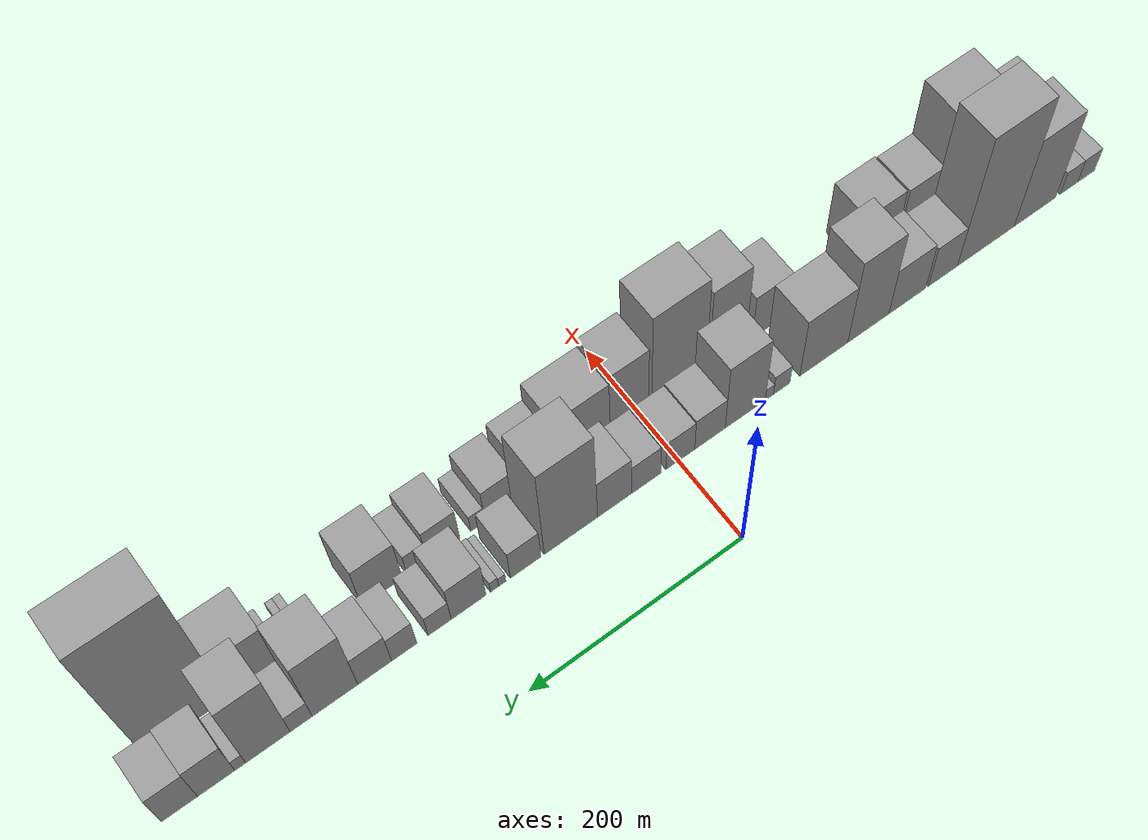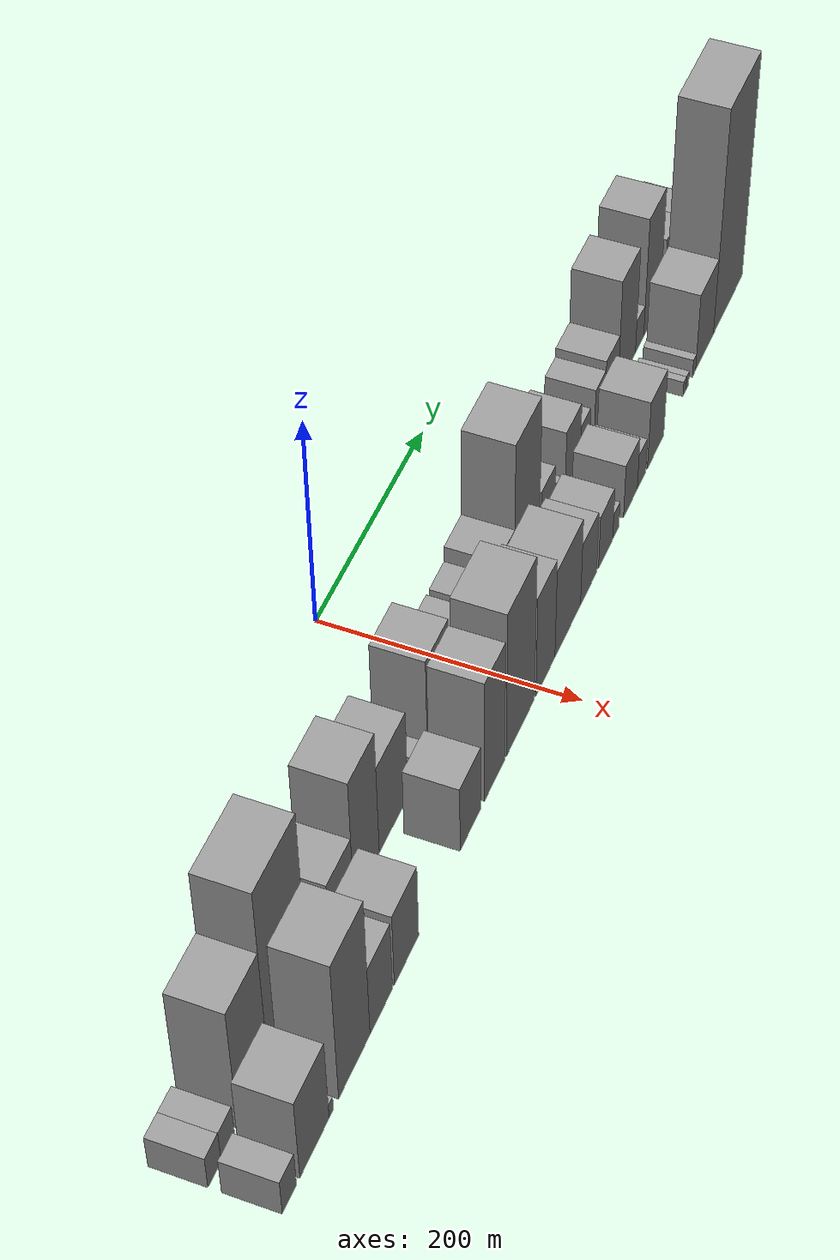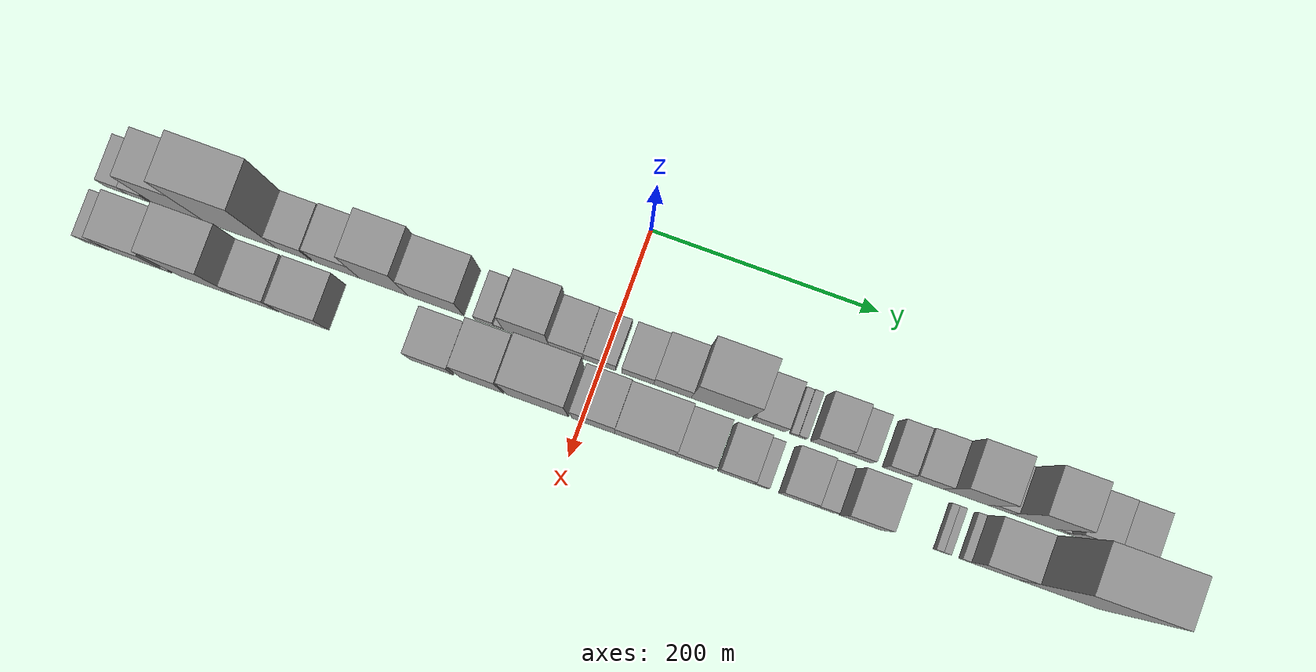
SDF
<sdf version="1.6">
 <world name="default">
  <scene>
   <sky><clouds><speed>12</speed></clouds></sky>
   <ambient>0.4 0.4 0.4 1</ambient>
   <background>0.7 0.7 0.7 1</background>
   <shadows>1</shadows>
  </scene>
  <gravity>0 0 -9.8066</gravity>
  <magnetic_field>6e-06 2.3e-05 -4.2e-05</magnetic_field>
  <physics default="0" name="default_physics" type="ode">
   <ode>
    <solver>
     <type>quick</type>
     <iters>10</iters>
     <sor>1.0</sor>
     <use_dynamic_moi_rescaling>0</use_dynamic_moi_rescaling>
    </solver>
    <constraints>
     <cfm>0</cfm>
     <erp>0.2</erp>
     <contact_max_correcting_vel>100</contact_max_correcting_vel>
     <contact_surface_layer>0.001</contact_surface_layer>
    </constraints>
   </ode>
   <max_step_size>0.004</max_step_size>
   <real_time_factor>1</real_time_factor>
   <real_time_update_rate>250</real_time_update_rate>
  </physics>
  <light name="sun" type="directional">
   <pose>0 0 10 0 0 0</pose>
   <diffuse>0.8 0.8 0.8 1</diffuse>
   <specular>0.2 0.2 0.2 1</specular>
   <attenuation>
    <range>1000</range>
    <constant>0.9</constant>
    <linear>0.01</linear>
    <quadratic>0.001</quadratic>
   </attenuation>
   <direction>-0.5 0.1 -0.9</direction>
  </light>
  <model name="building_1">
   <static>1</static>
   <pose>100.0000 -428.4598 0 0.000000 0.000000 0.000000</pose>
   <link name="link">
    <pose>0 0 16.50 0 0 0</pose>
    <collision name="collision"><geometry><box><size>40.0000 19.0804 33.0000</size></box></geometry></collision>
    <visual name="visual">
     <cast_shadows>0</cast_shadows>
     <geometry><box><size>40.0000 19.0804 33.0000</size></box></geometry>
     <material>
      <script>
       <uri>model://grey_wall/materials/scripts</uri>
       <uri>model://grey_wall/materials/textures</uri>
       <name>vrc/grey_wall</name>
      </script>
     </material>
    </visual>
   </link>
  </model>
  <model name="building_2">
   <static>1</static>
   <pose>100.0000 -409.0449 0 0.000000 0.000000 0.000000</pose>
   <link name="link">
    <pose>0 0 16.50 0 0 0</pose>
    <collision name="collision"><geometry><box><size>40.0000 19.7494 33.0000</size></box></geometry></collision>
    <visual name="visual">
     <cast_shadows>0</cast_shadows>
     <geometry><box><size>40.0000 19.7494 33.0000</size></box></geometry>
     <material>
      <script>
       <uri>model://grey_wall/materials/scripts</uri>
       <uri>model://grey_wall/materials/textures</uri>
       <name>vrc/grey_wall</name>
      </script>
     </material>
    </visual>
   </link>
  </model>
  <model name="building_3">
   <static>1</static>
   <pose>100.0000 -371.2185 0 0.000000 0.000000 0.000000</pose>
   <link name="link">
    <pose>0 0 63.00 0 0 0</pose>
    <collision name="collision"><geometry><box><size>40.0000 45.9032 126.0000</size></box></geometry></collision>
    <visual name="visual">
     <cast_shadows>0</cast_shadows>
     <geometry><box><size>40.0000 45.9032 126.0000</size></box></geometry>
     <material>
      <script>
       <uri>model://grey_wall/materials/scripts</uri>
       <uri>model://grey_wall/materials/textures</uri>
       <name>vrc/grey_wall</name>
      </script>
     </material>
    </visual>
   </link>
  </model>
  <model name="building_4">
   <static>1</static>
   <pose>100.0000 -317.2140 0 0.000000 0.000000 0.000000</pose>
   <link name="link">
    <pose>0 0 93.00 0 0 0</pose>
    <collision name="collision"><geometry><box><size>40.0000 62.1059 186.0000</size></box></geometry></collision>
    <visual name="visual">
     <cast_shadows>0</cast_shadows>
     <geometry><box><size>40.0000 62.1059 186.0000</size></box></geometry>
     <material>
      <script>
       <uri>model://grey_wall/materials/scripts</uri>
       <uri>model://grey_wall/materials/textures</uri>
       <name>vrc/grey_wall</name>
      </script>
     </material>
    </visual>
   </link>
  </model>
  <model name="building_5">
   <static>1</static>
   <pose>100.0000 -270.7139 0 0.000000 0.000000 0.000000</pose>
   <link name="link">
    <pose>0 0 30.00 0 0 0</pose>
    <collision name="collision"><geometry><box><size>40.0000 30.8943 60.0000</size></box></geometry></collision>
    <visual name="visual">
     <cast_shadows>0</cast_shadows>
     <geometry><box><size>40.0000 30.8943 60.0000</size></box></geometry>
     <material>
      <script>
       <uri>model://grey_wall/materials/scripts</uri>
       <uri>model://grey_wall/materials/textures</uri>
       <name>vrc/grey_wall</name>
      </script>
     </material>
    </visual>
   </link>
  </model>
  <model name="building_6">
   <static>1</static>
   <pose>100.0000 -232.6932 0 0.000000 0.000000 0.000000</pose>
   <link name="link">
    <pose>0 0 34.50 0 0 0</pose>
    <collision name="collision"><geometry><box><size>40.0000 39.1470 69.0000</size></box></geometry></collision>
    <visual name="visual">
     <cast_shadows>0</cast_shadows>
     <geometry><box><size>40.0000 39.1470 69.0000</size></box></geometry>
     <material>
      <script>
       <uri>model://grey_wall/materials/scripts</uri>
       <uri>model://grey_wall/materials/textures</uri>
       <name>vrc/grey_wall</name>
      </script>
     </material>
    </visual>
   </link>
  </model>
  <model name="building_7">
   <static>1</static>
   <pose>100.0000 -191.7499 0 0.000000 0.000000 0.000000</pose>
   <link name="link">
    <pose>0 0 63.00 0 0 0</pose>
    <collision name="collision"><geometry><box><size>40.0000 42.7397 126.0000</size></box></geometry></collision>
    <visual name="visual">
     <cast_shadows>0</cast_shadows>
     <geometry><box><size>40.0000 42.7397 126.0000</size></box></geometry>
     <material>
      <script>
       <uri>model://grey_wall/materials/scripts</uri>
       <uri>model://grey_wall/materials/textures</uri>
       <name>vrc/grey_wall</name>
      </script>
     </material>
    </visual>
   </link>
  </model>
  <model name="building_8">
   <static>1</static>
   <pose>100.0000 -145.7339 0 0.000000 0.000000 0.000000</pose>
   <link name="link">
    <pose>0 0 45.00 0 0 0</pose>
    <collision name="collision"><geometry><box><size>40.0000 49.2923 90.0000</size></box></geometry></collision>
    <visual name="visual">
     <cast_shadows>0</cast_shadows>
     <geometry><box><size>40.0000 49.2923 90.0000</size></box></geometry>
     <material>
      <script>
       <uri>model://grey_wall/materials/scripts</uri>
       <uri>model://grey_wall/materials/textures</uri>
       <name>vrc/grey_wall</name>
      </script>
     </material>
    </visual>
   </link>
  </model>
  <model name="building_9">
   <static>1</static>
   <pose>100.0000 -102.6833 0 0.000000 0.000000 0.000000</pose>
   <link name="link">
    <pose>0 0 15.00 0 0 0</pose>
    <collision name="collision"><geometry><box><size>40.0000 16.8089 30.0000</size></box></geometry></collision>
    <visual name="visual">
     <cast_shadows>0</cast_shadows>
     <geometry><box><size>40.0000 16.8089 30.0000</size></box></geometry>
     <material>
      <script>
       <uri>model://grey_wall/materials/scripts</uri>
       <uri>model://grey_wall/materials/textures</uri>
       <name>vrc/grey_wall</name>
      </script>
     </material>
    </visual>
   </link>
  </model>
  <model name="building_10">
   <static>1</static>
   <pose>100.0000 -90.1449 0 0.000000 0.000000 0.000000</pose>
   <link name="link">
    <pose>0 0 9.00 0 0 0</pose>
    <collision name="collision"><geometry><box><size>40.0000 8.2679 18.0000</size></box></geometry></collision>
    <visual name="visual">
     <cast_shadows>0</cast_shadows>
     <geometry><box><size>40.0000 8.2679 18.0000</size></box></geometry>
     <material>
      <script>
       <uri>model://grey_wall/materials/scripts</uri>
       <uri>model://grey_wall/materials/textures</uri>
       <name>vrc/grey_wall</name>
      </script>
     </material>
    </visual>
   </link>
  </model>
  <model name="building_11">
   <static>1</static>
   <pose>100.0000 -65.9788 0 0.000000 0.000000 0.000000</pose>
   <link name="link">
    <pose>0 0 51.00 0 0 0</pose>
    <collision name="collision"><geometry><box><size>40.0000 40.0644 102.0000</size></box></geometry></collision>
    <visual name="visual">
     <cast_shadows>0</cast_shadows>
     <geometry><box><size>40.0000 40.0644 102.0000</size></box></geometry>
     <material>
      <script>
       <uri>model://grey_wall/materials/scripts</uri>
       <uri>model://grey_wall/materials/textures</uri>
       <name>vrc/grey_wall</name>
      </script>
     </material>
    </visual>
   </link>
  </model>
  <model name="building_12">
   <static>1</static>
   <pose>100.0000 -30.8970 0 0.000000 0.000000 0.000000</pose>
   <link name="link">
    <pose>0 0 25.50 0 0 0</pose>
    <collision name="collision"><geometry><box><size>40.0000 30.0991 51.0000</size></box></geometry></collision>
    <visual name="visual">
     <cast_shadows>0</cast_shadows>
     <geometry><box><size>40.0000 30.0991 51.0000</size></box></geometry>
     <material>
      <script>
       <uri>model://grey_wall/materials/scripts</uri>
       <uri>model://grey_wall/materials/textures</uri>
       <name>vrc/grey_wall</name>
      </script>
     </material>
    </visual>
   </link>
  </model>
  <model name="building_13">
   <static>1</static>
   <pose>100.0000 -1.7950 0 0.000000 0.000000 0.000000</pose>
   <link name="link">
    <pose>0 0 24.00 0 0 0</pose>
    <collision name="collision"><geometry><box><size>40.0000 28.1050 48.0000</size></box></geometry></collision>
    <visual name="visual">
     <cast_shadows>0</cast_shadows>
     <geometry><box><size>40.0000 28.1050 48.0000</size></box></geometry>
     <material>
      <script>
       <uri>model://grey_wall/materials/scripts</uri>
       <uri>model://grey_wall/materials/textures</uri>
       <name>vrc/grey_wall</name>
      </script>
     </material>
    </visual>
   </link>
  </model>
  <model name="building_14">
   <static>1</static>
   <pose>100.0000 31.2725 0 0.000000 0.000000 0.000000</pose>
   <link name="link">
    <pose>0 0 24.00 0 0 0</pose>
    <collision name="collision"><geometry><box><size>40.0000 28.0299 48.0000</size></box></geometry></collision>
    <visual name="visual">
     <cast_shadows>0</cast_shadows>
     <geometry><box><size>40.0000 28.0299 48.0000</size></box></geometry>
     <material>
      <script>
       <uri>model://grey_wall/materials/scripts</uri>
       <uri>model://grey_wall/materials/textures</uri>
       <name>vrc/grey_wall</name>
      </script>
     </material>
    </visual>
   </link>
  </model>
  <model name="building_15">
   <static>1</static>
   <pose>100.0000 61.6546 0 0.000000 0.000000 0.000000</pose>
   <link name="link">
    <pose>0 0 31.50 0 0 0</pose>
    <collision name="collision"><geometry><box><size>40.0000 32.7342 63.0000</size></box></geometry></collision>
    <visual name="visual">
     <cast_shadows>0</cast_shadows>
     <geometry><box><size>40.0000 32.7342 63.0000</size></box></geometry>
     <material>
      <script>
       <uri>model://grey_wall/materials/scripts</uri>
       <uri>model://grey_wall/materials/textures</uri>
       <name>vrc/grey_wall</name>
      </script>
     </material>
    </visual>
   </link>
  </model>
  <model name="building_16">
   <static>1</static>
   <pose>100.0000 103.1810 0 0.000000 0.000000 0.000000</pose>
   <link name="link">
    <pose>0 0 73.50 0 0 0</pose>
    <collision name="collision"><geometry><box><size>40.0000 50.3187 147.0000</size></box></geometry></collision>
    <visual name="visual">
     <cast_shadows>0</cast_shadows>
     <geometry><box><size>40.0000 50.3187 147.0000</size></box></geometry>
     <material>
      <script>
       <uri>model://grey_wall/materials/scripts</uri>
       <uri>model://grey_wall/materials/textures</uri>
       <name>vrc/grey_wall</name>
      </script>
     </material>
    </visual>
   </link>
  </model>
  <model name="building_17">
   <static>1</static>
   <pose>100.0000 145.6034 0 0.000000 0.000000 0.000000</pose>
   <link name="link">
    <pose>0 0 24.00 0 0 0</pose>
    <collision name="collision"><geometry><box><size>40.0000 28.5263 48.0000</size></box></geometry></collision>
    <visual name="visual">
     <cast_shadows>0</cast_shadows>
     <geometry><box><size>40.0000 28.5263 48.0000</size></box></geometry>
     <material>
      <script>
       <uri>model://grey_wall/materials/scripts</uri>
       <uri>model://grey_wall/materials/textures</uri>
       <name>vrc/grey_wall</name>
      </script>
     </material>
    </visual>
   </link>
  </model>
  <model name="building_18">
   <static>1</static>
   <pose>100.0000 167.2527 0 0.000000 0.000000 0.000000</pose>
   <link name="link">
    <pose>0 0 7.50 0 0 0</pose>
    <collision name="collision"><geometry><box><size>40.0000 6.7721 15.0000</size></box></geometry></collision>
    <visual name="visual">
     <cast_shadows>0</cast_shadows>
     <geometry><box><size>40.0000 6.7721 15.0000</size></box></geometry>
     <material>
      <script>
       <uri>model://grey_wall/materials/scripts</uri>
       <uri>model://grey_wall/materials/textures</uri>
       <name>vrc/grey_wall</name>
      </script>
     </material>
    </visual>
   </link>
  </model>
  <model name="building_19">
   <static>1</static>
   <pose>100.0000 174.4113 0 0.000000 0.000000 0.000000</pose>
   <link name="link">
    <pose>0 0 9.00 0 0 0</pose>
    <collision name="collision"><geometry><box><size>40.0000 7.5451 18.0000</size></box></geometry></collision>
    <visual name="visual">
     <cast_shadows>0</cast_shadows>
     <geometry><box><size>40.0000 7.5451 18.0000</size></box></geometry>
     <material>
      <script>
       <uri>model://grey_wall/materials/scripts</uri>
       <uri>model://grey_wall/materials/textures</uri>
       <name>vrc/grey_wall</name>
      </script>
     </material>
    </visual>
   </link>
  </model>
  <model name="building_20">
   <static>1</static>
   <pose>100.0000 198.0526 0 0.000000 0.000000 0.000000</pose>
   <link name="link">
    <pose>0 0 30.00 0 0 0</pose>
    <collision name="collision"><geometry><box><size>40.0000 31.7376 60.0000</size></box></geometry></collision>
    <visual name="visual">
     <cast_shadows>0</cast_shadows>
     <geometry><box><size>40.0000 31.7376 60.0000</size></box></geometry>
     <material>
      <script>
       <uri>model://grey_wall/materials/scripts</uri>
       <uri>model://grey_wall/materials/textures</uri>
       <name>vrc/grey_wall</name>
      </script>
     </material>
    </visual>
   </link>
  </model>
  <model name="building_21">
   <static>1</static>
   <pose>100.0000 224.3703 0 0.000000 0.000000 0.000000</pose>
   <link name="link">
    <pose>0 0 18.00 0 0 0</pose>
    <collision name="collision"><geometry><box><size>40.0000 20.8978 36.0000</size></box></geometry></collision>
    <visual name="visual">
     <cast_shadows>0</cast_shadows>
     <geometry><box><size>40.0000 20.8978 36.0000</size></box></geometry>
     <material>
      <script>
       <uri>model://grey_wall/materials/scripts</uri>
       <uri>model://grey_wall/materials/textures</uri>
       <name>vrc/grey_wall</name>
      </script>
     </material>
    </visual>
   </link>
  </model>
  <model name="building_22">
   <static>1</static>
   <pose>100.0000 256.1415 0 0.000000 0.000000 0.000000</pose>
   <link name="link">
    <pose>0 0 22.50 0 0 0</pose>
    <collision name="collision"><geometry><box><size>40.0000 22.6446 45.0000</size></box></geometry></collision>
    <visual name="visual">
     <cast_shadows>0</cast_shadows>
     <geometry><box><size>40.0000 22.6446 45.0000</size></box></geometry>
     <material>
      <script>
       <uri>model://grey_wall/materials/scripts</uri>
       <uri>model://grey_wall/materials/textures</uri>
       <name>vrc/grey_wall</name>
      </script>
     </material>
    </visual>
   </link>
  </model>
  <model name="building_23">
   <static>1</static>
   <pose>100.0000 282.3824 0 0.000000 0.000000 0.000000</pose>
   <link name="link">
    <pose>0 0 27.00 0 0 0</pose>
    <collision name="collision"><geometry><box><size>40.0000 29.8373 54.0000</size></box></geometry></collision>
    <visual name="visual">
     <cast_shadows>0</cast_shadows>
     <geometry><box><size>40.0000 29.8373 54.0000</size></box></geometry>
     <material>
      <script>
       <uri>model://grey_wall/materials/scripts</uri>
       <uri>model://grey_wall/materials/textures</uri>
       <name>vrc/grey_wall</name>
      </script>
     </material>
    </visual>
   </link>
  </model>
  <model name="building_24">
   <static>1</static>
   <pose>100.0000 317.1750 0 0.000000 0.000000 0.000000</pose>
   <link name="link">
    <pose>0 0 54.00 0 0 0</pose>
    <collision name="collision"><geometry><box><size>40.0000 39.7479 108.0000</size></box></geometry></collision>
    <visual name="visual">
     <cast_shadows>0</cast_shadows>
     <geometry><box><size>40.0000 39.7479 108.0000</size></box></geometry>
     <material>
      <script>
       <uri>model://grey_wall/materials/scripts</uri>
       <uri>model://grey_wall/materials/textures</uri>
       <name>vrc/grey_wall</name>
      </script>
     </material>
    </visual>
   </link>
  </model>
  <model name="building_25">
   <static>1</static>
   <pose>100.0000 346.6043 0 0.000000 0.000000 0.000000</pose>
   <link name="link">
    <pose>0 0 16.50 0 0 0</pose>
    <collision name="collision"><geometry><box><size>40.0000 19.1107 33.0000</size></box></geometry></collision>
    <visual name="visual">
     <cast_shadows>0</cast_shadows>
     <geometry><box><size>40.0000 19.1107 33.0000</size></box></geometry>
     <material>
      <script>
       <uri>model://grey_wall/materials/scripts</uri>
       <uri>model://grey_wall/materials/textures</uri>
       <name>vrc/grey_wall</name>
      </script>
     </material>
    </visual>
   </link>
  </model>
  <model name="building_26">
   <static>1</static>
   <pose>100.0000 375.1776 0 0.000000 0.000000 0.000000</pose>
   <link name="link">
    <pose>0 0 60.00 0 0 0</pose>
    <collision name="collision"><geometry><box><size>40.0000 38.0360 120.0000</size></box></geometry></collision>
    <visual name="visual">
     <cast_shadows>0</cast_shadows>
     <geometry><box><size>40.0000 38.0360 120.0000</size></box></geometry>
     <material>
      <script>
       <uri>model://grey_wall/materials/scripts</uri>
       <uri>model://grey_wall/materials/textures</uri>
       <name>vrc/grey_wall</name>
      </script>
     </material>
    </visual>
   </link>
  </model>
  <model name="building_27">
   <static>1</static>
   <pose>100.0000 398.8206 0 0.000000 0.000000 0.000000</pose>
   <link name="link">
    <pose>0 0 10.50 0 0 0</pose>
    <collision name="collision"><geometry><box><size>40.0000 9.2500 21.0000</size></box></geometry></collision>
    <visual name="visual">
     <cast_shadows>0</cast_shadows>
     <geometry><box><size>40.0000 9.2500 21.0000</size></box></geometry>
     <material>
      <script>
       <uri>model://grey_wall/materials/scripts</uri>
       <uri>model://grey_wall/materials/textures</uri>
       <name>vrc/grey_wall</name>
      </script>
     </material>
    </visual>
   </link>
  </model>
  <model name="building_28">
   <static>1</static>
   <pose>100.0000 419.0228 0 0.000000 0.000000 0.000000</pose>
   <link name="link">
    <pose>0 0 30.00 0 0 0</pose>
    <collision name="collision"><geometry><box><size>40.0000 31.1543 60.0000</size></box></geometry></collision>
    <visual name="visual">
     <cast_shadows>0</cast_shadows>
     <geometry><box><size>40.0000 31.1543 60.0000</size></box></geometry>
     <material>
      <script>
       <uri>model://grey_wall/materials/scripts</uri>
       <uri>model://grey_wall/materials/textures</uri>
       <name>vrc/grey_wall</name>
      </script>
     </material>
    </visual>
   </link>
  </model>
  <model name="building_29">
   <static>1</static>
   <pose>100.0000 449.6907 0 0.000000 0.000000 0.000000</pose>
   <link name="link">
    <pose>0 0 28.50 0 0 0</pose>
    <collision name="collision"><geometry><box><size>40.0000 30.1815 57.0000</size></box></geometry></collision>
    <visual name="visual">
     <cast_shadows>0</cast_shadows>
     <geometry><box><size>40.0000 30.1815 57.0000</size></box></geometry>
     <material>
      <script>
       <uri>model://grey_wall/materials/scripts</uri>
       <uri>model://grey_wall/materials/textures</uri>
       <name>vrc/grey_wall</name>
      </script>
     </material>
    </visual>
   </link>
  </model>
  <model name="building_30">
   <static>1</static>
   <pose>149.0000 -427.4850 0 0.000000 0.000000 0.000000</pose>
   <link name="link">
    <pose>0 0 18.00 0 0 0</pose>
    <collision name="collision"><geometry><box><size>40.0000 21.0301 36.0000</size></box></geometry></collision>
    <visual name="visual">
     <cast_shadows>0</cast_shadows>
     <geometry><box><size>40.0000 21.0301 36.0000</size></box></geometry>
     <material>
      <script>
       <uri>model://grey_wall/materials/scripts</uri>
       <uri>model://grey_wall/materials/textures</uri>
       <name>vrc/grey_wall</name>
      </script>
     </material>
    </visual>
   </link>
  </model>
  <model name="building_31">
   <static>1</static>
   <pose>149.0000 -389.6378 0 0.000000 0.000000 0.000000</pose>
   <link name="link">
    <pose>0 0 42.00 0 0 0</pose>
    <collision name="collision"><geometry><box><size>40.0000 44.6644 84.0000</size></box></geometry></collision>
    <visual name="visual">
     <cast_shadows>0</cast_shadows>
     <geometry><box><size>40.0000 44.6644 84.0000</size></box></geometry>
     <material>
      <script>
       <uri>model://grey_wall/materials/scripts</uri>
       <uri>model://grey_wall/materials/textures</uri>
       <name>vrc/grey_wall</name>
      </script>
     </material>
    </visual>
   </link>
  </model>
  <model name="building_32">
   <static>1</static>
   <pose>149.0000 -363.9322 0 0.000000 0.000000 0.000000</pose>
   <link name="link">
    <pose>0 0 7.50 0 0 0</pose>
    <collision name="collision"><geometry><box><size>40.0000 6.7468 15.0000</size></box></geometry></collision>
    <visual name="visual">
     <cast_shadows>0</cast_shadows>
     <geometry><box><size>40.0000 6.7468 15.0000</size></box></geometry>
     <material>
      <script>
       <uri>model://grey_wall/materials/scripts</uri>
       <uri>model://grey_wall/materials/textures</uri>
       <name>vrc/grey_wall</name>
      </script>
     </material>
    </visual>
   </link>
  </model>
  <model name="building_33">
   <static>1</static>
   <pose>149.0000 -327.5859 0 0.000000 0.000000 0.000000</pose>
   <link name="link">
    <pose>0 0 72.00 0 0 0</pose>
    <collision name="collision"><geometry><box><size>40.0000 49.9457 144.0000</size></box></geometry></collision>
    <visual name="visual">
     <cast_shadows>0</cast_shadows>
     <geometry><box><size>40.0000 49.9457 144.0000</size></box></geometry>
     <material>
      <script>
       <uri>model://grey_wall/materials/scripts</uri>
       <uri>model://grey_wall/materials/textures</uri>
       <name>vrc/grey_wall</name>
      </script>
     </material>
    </visual>
   </link>
  </model>
  <model name="building_34">
   <static>1</static>
   <pose>149.0000 -284.2846 0 0.000000 0.000000 0.000000</pose>
   <link name="link">
    <pose>0 0 36.00 0 0 0</pose>
    <collision name="collision"><geometry><box><size>40.0000 36.6569 72.0000</size></box></geometry></collision>
    <visual name="visual">
     <cast_shadows>0</cast_shadows>
     <geometry><box><size>40.0000 36.6569 72.0000</size></box></geometry>
     <material>
      <script>
       <uri>model://grey_wall/materials/scripts</uri>
       <uri>model://grey_wall/materials/textures</uri>
       <name>vrc/grey_wall</name>
      </script>
     </material>
    </visual>
   </link>
  </model>
  <model name="building_35">
   <static>1</static>
   <pose>149.0000 -242.3884 0 0.000000 0.000000 0.000000</pose>
   <link name="link">
    <pose>0 0 37.50 0 0 0</pose>
    <collision name="collision"><geometry><box><size>40.0000 41.1353 75.0000</size></box></geometry></collision>
    <visual name="visual">
     <cast_shadows>0</cast_shadows>
     <geometry><box><size>40.0000 41.1353 75.0000</size></box></geometry>
     <material>
      <script>
       <uri>model://grey_wall/materials/scripts</uri>
       <uri>model://grey_wall/materials/textures</uri>
       <name>vrc/grey_wall</name>
      </script>
     </material>
    </visual>
   </link>
  </model>
  <model name="building_36">
   <static>1</static>
   <pose>149.0000 -130.9183 0 0.000000 0.000000 0.000000</pose>
   <link name="link">
    <pose>0 0 33.00 0 0 0</pose>
    <collision name="collision"><geometry><box><size>40.0000 37.2683 66.0000</size></box></geometry></collision>
    <visual name="visual">
     <cast_shadows>0</cast_shadows>
     <geometry><box><size>40.0000 37.2683 66.0000</size></box></geometry>
     <material>
      <script>
       <uri>model://grey_wall/materials/scripts</uri>
       <uri>model://grey_wall/materials/textures</uri>
       <name>vrc/grey_wall</name>
      </script>
     </material>
    </visual>
   </link>
  </model>
  <model name="building_37">
   <static>1</static>
   <pose>149.0000 -86.6098 0 0.000000 0.000000 0.000000</pose>
   <link name="link">
    <pose>0 0 61.50 0 0 0</pose>
    <collision name="collision"><geometry><box><size>40.0000 37.3486 123.0000</size></box></geometry></collision>
    <visual name="visual">
     <cast_shadows>0</cast_shadows>
     <geometry><box><size>40.0000 37.3486 123.0000</size></box></geometry>
     <material>
      <script>
       <uri>model://grey_wall/materials/scripts</uri>
       <uri>model://grey_wall/materials/textures</uri>
       <name>vrc/grey_wall</name>
      </script>
     </material>
    </visual>
   </link>
  </model>
  <model name="building_38">
   <static>1</static>
   <pose>149.0000 -38.0776 0 0.000000 0.000000 0.000000</pose>
   <link name="link">
    <pose>0 0 73.50 0 0 0</pose>
    <collision name="collision"><geometry><box><size>40.0000 53.7159 147.0000</size></box></geometry></collision>
    <visual name="visual">
     <cast_shadows>0</cast_shadows>
     <geometry><box><size>40.0000 53.7159 147.0000</size></box></geometry>
     <material>
      <script>
       <uri>model://grey_wall/materials/scripts</uri>
       <uri>model://grey_wall/materials/textures</uri>
       <name>vrc/grey_wall</name>
      </script>
     </material>
    </visual>
   </link>
  </model>
  <model name="building_39">
   <static>1</static>
   <pose>149.0000 10.4908 0 0.000000 0.000000 0.000000</pose>
   <link name="link">
    <pose>0 0 51.00 0 0 0</pose>
    <collision name="collision"><geometry><box><size>40.0000 37.4210 102.0000</size></box></geometry></collision>
    <visual name="visual">
     <cast_shadows>0</cast_shadows>
     <geometry><box><size>40.0000 37.4210 102.0000</size></box></geometry>
     <material>
      <script>
       <uri>model://grey_wall/materials/scripts</uri>
       <uri>model://grey_wall/materials/textures</uri>
       <name>vrc/grey_wall</name>
      </script>
     </material>
    </visual>
   </link>
  </model>
  <model name="building_40">
   <static>1</static>
   <pose>149.0000 55.1138 0 0.000000 0.000000 0.000000</pose>
   <link name="link">
    <pose>0 0 45.00 0 0 0</pose>
    <collision name="collision"><geometry><box><size>40.0000 51.8248 90.0000</size></box></geometry></collision>
    <visual name="visual">
     <cast_shadows>0</cast_shadows>
     <geometry><box><size>40.0000 51.8248 90.0000</size></box></geometry>
     <material>
      <script>
       <uri>model://grey_wall/materials/scripts</uri>
       <uri>model://grey_wall/materials/textures</uri>
       <name>vrc/grey_wall</name>
      </script>
     </material>
    </visual>
   </link>
  </model>
  <model name="building_41">
   <static>1</static>
   <pose>149.0000 97.7562 0 0.000000 0.000000 0.000000</pose>
   <link name="link">
    <pose>0 0 31.50 0 0 0</pose>
    <collision name="collision"><geometry><box><size>40.0000 33.4600 63.0000</size></box></geometry></collision>
    <visual name="visual">
     <cast_shadows>0</cast_shadows>
     <geometry><box><size>40.0000 33.4600 63.0000</size></box></geometry>
     <material>
      <script>
       <uri>model://grey_wall/materials/scripts</uri>
       <uri>model://grey_wall/materials/textures</uri>
       <name>vrc/grey_wall</name>
      </script>
     </material>
    </visual>
   </link>
  </model>
  <model name="building_42">
   <static>1</static>
   <pose>149.0000 133.5364 0 0.000000 0.000000 0.000000</pose>
   <link name="link">
    <pose>0 0 27.00 0 0 0</pose>
    <collision name="collision"><geometry><box><size>40.0000 30.1005 54.0000</size></box></geometry></collision>
    <visual name="visual">
     <cast_shadows>0</cast_shadows>
     <geometry><box><size>40.0000 30.1005 54.0000</size></box></geometry>
     <material>
      <script>
       <uri>model://grey_wall/materials/scripts</uri>
       <uri>model://grey_wall/materials/textures</uri>
       <name>vrc/grey_wall</name>
      </script>
     </material>
    </visual>
   </link>
  </model>
  <model name="building_43">
   <static>1</static>
   <pose>149.0000 155.2180 0 0.000000 0.000000 0.000000</pose>
   <link name="link">
    <pose>0 0 13.50 0 0 0</pose>
    <collision name="collision"><geometry><box><size>40.0000 13.2626 27.0000</size></box></geometry></collision>
    <visual name="visual">
     <cast_shadows>0</cast_shadows>
     <geometry><box><size>40.0000 13.2626 27.0000</size></box></geometry>
     <material>
      <script>
       <uri>model://grey_wall/materials/scripts</uri>
       <uri>model://grey_wall/materials/textures</uri>
       <name>vrc/grey_wall</name>
      </script>
     </material>
    </visual>
   </link>
  </model>
  <model name="building_44">
   <static>1</static>
   <pose>149.0000 186.9464 0 0.000000 0.000000 0.000000</pose>
   <link name="link">
    <pose>0 0 27.00 0 0 0</pose>
    <collision name="collision"><geometry><box><size>40.0000 30.1942 54.0000</size></box></geometry></collision>
    <visual name="visual">
     <cast_shadows>0</cast_shadows>
     <geometry><box><size>40.0000 30.1942 54.0000</size></box></geometry>
     <material>
      <script>
       <uri>model://grey_wall/materials/scripts</uri>
       <uri>model://grey_wall/materials/textures</uri>
       <name>vrc/grey_wall</name>
      </script>
     </material>
    </visual>
   </link>
  </model>
  <model name="building_45">
   <static>1</static>
   <pose>149.0000 211.2514 0 0.000000 0.000000 0.000000</pose>
   <link name="link">
    <pose>0 0 18.00 0 0 0</pose>
    <collision name="collision"><geometry><box><size>40.0000 18.4159 36.0000</size></box></geometry></collision>
    <visual name="visual">
     <cast_shadows>0</cast_shadows>
     <geometry><box><size>40.0000 18.4159 36.0000</size></box></geometry>
     <material>
      <script>
       <uri>model://grey_wall/materials/scripts</uri>
       <uri>model://grey_wall/materials/textures</uri>
       <name>vrc/grey_wall</name>
      </script>
     </material>
    </visual>
   </link>
  </model>
  <model name="building_46">
   <static>1</static>
   <pose>149.0000 242.9325 0 0.000000 0.000000 0.000000</pose>
   <link name="link">
    <pose>0 0 34.50 0 0 0</pose>
    <collision name="collision"><geometry><box><size>40.0000 36.9463 69.0000</size></box></geometry></collision>
    <visual name="visual">
     <cast_shadows>0</cast_shadows>
     <geometry><box><size>40.0000 36.9463 69.0000</size></box></geometry>
     <material>
      <script>
       <uri>model://grey_wall/materials/scripts</uri>
       <uri>model://grey_wall/materials/textures</uri>
       <name>vrc/grey_wall</name>
      </script>
     </material>
    </visual>
   </link>
  </model>
  <model name="building_47">
   <static>1</static>
   <pose>149.0000 309.3114 0 0.000000 0.000000 0.000000</pose>
   <link name="link">
    <pose>0 0 7.50 0 0 0</pose>
    <collision name="collision"><geometry><box><size>40.0000 6.6039 15.0000</size></box></geometry></collision>
    <visual name="visual">
     <cast_shadows>0</cast_shadows>
     <geometry><box><size>40.0000 6.6039 15.0000</size></box></geometry>
     <material>
      <script>
       <uri>model://grey_wall/materials/scripts</uri>
       <uri>model://grey_wall/materials/textures</uri>
       <name>vrc/grey_wall</name>
      </script>
     </material>
    </visual>
   </link>
  </model>
  <model name="building_48">
   <static>1</static>
   <pose>149.0000 315.8368 0 0.000000 0.000000 0.000000</pose>
   <link name="link">
    <pose>0 0 7.50 0 0 0</pose>
    <collision name="collision"><geometry><box><size>40.0000 6.4470 15.0000</size></box></geometry></collision>
    <visual name="visual">
     <cast_shadows>0</cast_shadows>
     <geometry><box><size>40.0000 6.4470 15.0000</size></box></geometry>
     <material>
      <script>
       <uri>model://grey_wall/materials/scripts</uri>
       <uri>model://grey_wall/materials/textures</uri>
       <name>vrc/grey_wall</name>
      </script>
     </material>
    </visual>
   </link>
  </model>
  <model name="building_49">
   <static>1</static>
   <pose>149.0000 331.7492 0 0.000000 0.000000 0.000000</pose>
   <link name="link">
    <pose>0 0 9.00 0 0 0</pose>
    <collision name="collision"><geometry><box><size>40.0000 7.3778 18.0000</size></box></geometry></collision>
    <visual name="visual">
     <cast_shadows>0</cast_shadows>
     <geometry><box><size>40.0000 7.3778 18.0000</size></box></geometry>
     <material>
      <script>
       <uri>model://grey_wall/materials/scripts</uri>
       <uri>model://grey_wall/materials/textures</uri>
       <name>vrc/grey_wall</name>
      </script>
     </material>
    </visual>
   </link>
  </model>
  <model name="building_50">
   <static>1</static>
   <pose>149.0000 356.9180 0 0.000000 0.000000 0.000000</pose>
   <link name="link">
    <pose>0 0 39.00 0 0 0</pose>
    <collision name="collision"><geometry><box><size>40.0000 42.9598 78.0000</size></box></geometry></collision>
    <visual name="visual">
     <cast_shadows>0</cast_shadows>
     <geometry><box><size>40.0000 42.9598 78.0000</size></box></geometry>
     <material>
      <script>
       <uri>model://grey_wall/materials/scripts</uri>
       <uri>model://grey_wall/materials/textures</uri>
       <name>vrc/grey_wall</name>
      </script>
     </material>
    </visual>
   </link>
  </model>
  <model name="building_51">
   <static>1</static>
   <pose>149.0000 414.0786 0 0.000000 0.000000 0.000000</pose>
   <link name="link">
    <pose>0 0 111.00 0 0 0</pose>
    <collision name="collision"><geometry><box><size>40.0000 71.3614 222.0000</size></box></geometry></collision>
    <visual name="visual">
     <cast_shadows>0</cast_shadows>
     <geometry><box><size>40.0000 71.3614 222.0000</size></box></geometry>
     <material>
      <script>
       <uri>model://grey_wall/materials/scripts</uri>
       <uri>model://grey_wall/materials/textures</uri>
       <name>vrc/grey_wall</name>
      </script>
     </material>
    </visual>
   </link>
  </model>
 </world>
</sdf>
